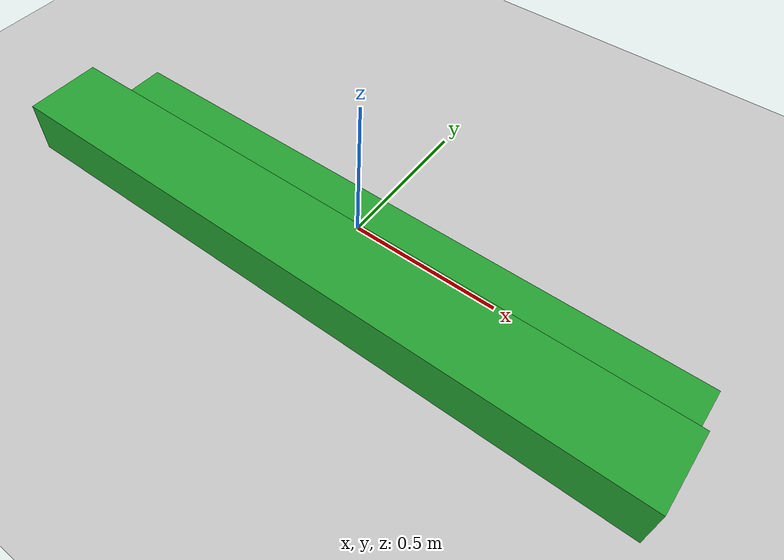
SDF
<sdf version="1.6">
 <world name="default">
  <light name="sun" type="directional">
   <pose>0 0 10 0 -0 0</pose>
   <diffuse>0.8 0.8 0.8 1</diffuse>
   <specular>0.2 0.2 0.2 1</specular>
   <attenuation>
    <range>1000</range>
    <constant>0.9</constant>
    <linear>0.01</linear>
    <quadratic>0.001</quadratic>
   </attenuation>
   <direction>-0.5 0.1 -0.9</direction>
  </light>
  <model name="ground_plane">
   <static>1</static>
   <link name="link">
    <collision name="collision">
     <geometry><plane><normal>0 0 1</normal><size>100 100</size></plane></geometry>
     <surface>
      <contact><collide_bitmask>65535</collide_bitmask></contact>
      <friction><ode><mu>100</mu><mu2>50</mu2></ode></friction>
     </surface>
    </collision>
    <visual name="visual">
     <cast_shadows>0</cast_shadows>
     <geometry><plane><normal>0 0 1</normal><size>100 100</size></plane></geometry>
     <material>
      <script><uri>file://media/materials/scripts/gazebo.material</uri><name>Gazebo/Grey</name></script>
     </material>
    </visual>
   </link>
  </model>
  <gravity>0 0 -9.8</gravity>
  <magnetic_field>6e-06 2.3e-05 -4.2e-05</magnetic_field>
  <atmosphere type="adiabatic"/>
  <physics name="default_physics" default="0" type="ode">
   <max_step_size>0.001</max_step_size>
   <real_time_factor>1</real_time_factor>
   <real_time_update_rate>1000</real_time_update_rate>
  </physics>
  <scene><ambient>0.4 0.4 0.4 1</ambient><background>0.7 0.7 0.7 1</background><shadows>1</shadows></scene>
  <spherical_coordinates>
   <surface_model>EARTH_WGS84</surface_model>
   <latitude_deg>0</latitude_deg>
   <longitude_deg>0</longitude_deg>
   <elevation>0</elevation>
   <heading_deg>0</heading_deg>
  </spherical_coordinates>
  <model name="Untitled">
   <pose>0.11 -1.73 0 0 -0 0</pose>
   <link name="Stairs_0">
    <visual name="Stairs_0_Visual_0">
     <pose>-0 1.63333 0.083333 0 -0 0</pose>
     <geometry><box><size>2 0.233333 0.166667</size></box></geometry>
     <material>
      <script><uri>file://media/materials/scripts/gazebo.material</uri><name>Gazebo/Green</name></script>
      <ambient>1 1 1 1</ambient>
     </material>
     <meta><layer>0</layer></meta>
    </visual>
    <collision name="Stairs_0_Collision_0">
     <geometry><box><size>2 0.233333 0.166667</size></box></geometry>
     <pose>-0 1.63333 0.083333 0 -0 0</pose>
    </collision>
    <visual name="Stairs_0_Visual_1">
     <pose>-0 1.4 0.25 0 -0 0</pose>
     <geometry><box><size>2 0.233333 0.166667</size></box></geometry>
     <material>
      <script><uri>file://media/materials/scripts/gazebo.material</uri><name>Gazebo/Green</name></script>
      <ambient>1 1 1 1</ambient>
     </material>
     <meta><layer>0</layer></meta>
    </visual>
    <collision name="Stairs_0_Collision_1">
     <geometry><box><size>2 0.233333 0.166667</size></box></geometry>
     <pose>-0 1.4 0.25 0 -0 0</pose>
    </collision>
   </link>
   <static>1</static>
  </model>
 </world>
</sdf>
